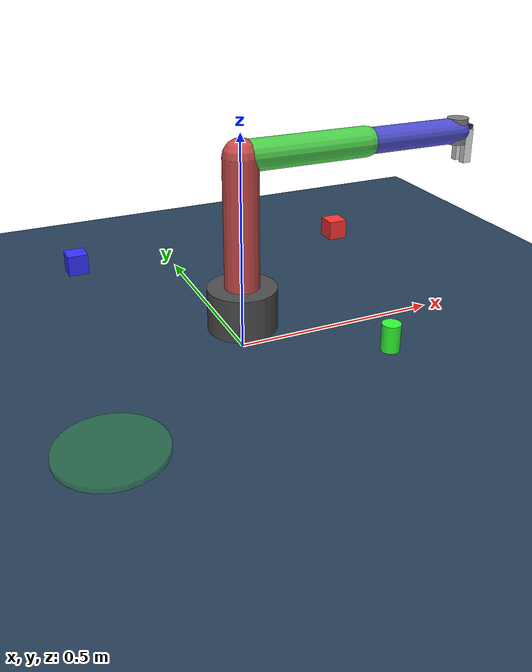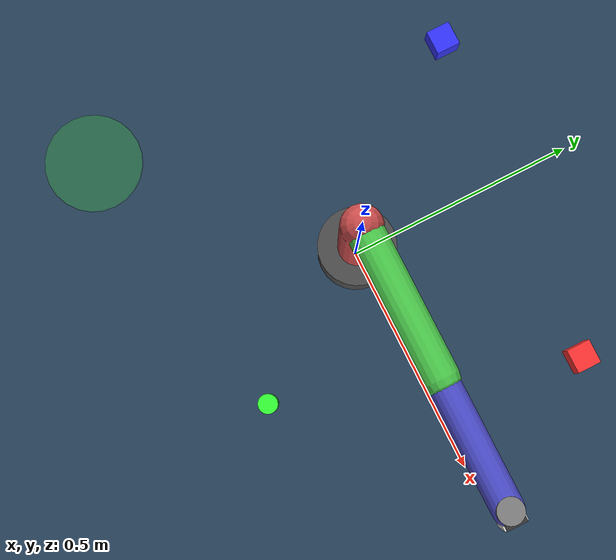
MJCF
<mujoco model="robot_arm_pick_place">
  <compiler angle="radian" coordinate="local"/>

  <option timestep="0.002" gravity="0 0 -9.81">
    <flag contact="enable"/>
  </option>

  <visual>
    <headlight diffuse="0.6 0.6 0.6" ambient="0.3 0.3 0.3" specular="0 0 0"/>
    <rgba haze="0.15 0.25 0.35 1"/>
    <global azimuth="120" elevation="-20"/>
  </visual>

  <asset>
    <texture type="skybox" builtin="gradient" rgb1="0.3 0.5 0.7" rgb2="0 0 0" width="512" height="512"/>
    <texture name="texplane" type="2d" builtin="checker" rgb1="0.2 0.3 0.4" rgb2="0.1 0.2 0.3" width="512" height="512" mark="cross" markrgb="1 1 1"/>
    <material name="matplane" reflectance="0.3" texture="texplane" texrepeat="1 1" texuniform="true"/>
  </asset>

  <worldbody>
    <light directional="true" diffuse="0.4 0.4 0.4" specular="0.1 0.1 0.1" pos="0 0 5.0" dir="0 0 -1" castshadow="false"/>
    <light directional="true" diffuse="0.6 0.6 0.6" specular="0.2 0.2 0.2" pos="0 0 4" dir="0 0 -1"/>

    <geom name="floor" pos="0 0 0" size="2 2 0.1" type="plane" material="matplane" condim="3"/>

    <!-- Robot arm base -->
    <body name="base" pos="0 0 0.1">
      <geom type="cylinder" size="0.08 0.05" rgba="0.3 0.3 0.3 1"/>
      <inertial pos="0 0 0" mass="2" diaginertia="0.01 0.01 0.01"/>

      <!-- Joint 1: Base rotation -->
      <joint name="joint1" type="hinge" pos="0 0 0" axis="0 0 1" range="-3.14 3.14" damping="0.5"/>

      <!-- Link 1 -->
      <body name="link1" pos="0 0 0.05">
        <geom type="capsule" fromto="0 0 0 0 0 0.3" size="0.04" rgba="0.8 0.3 0.3 1"/>
        <inertial pos="0 0 0.15" mass="1" diaginertia="0.01 0.01 0.001"/>

        <!-- Joint 2: Shoulder -->
        <body name="link2" pos="0 0 0.3">
          <joint name="joint2" type="hinge" pos="0 0 0" axis="0 1 0" range="-2.0 2.0" damping="0.5"/>
          <geom type="capsule" fromto="0 0 0 0.3 0 0" size="0.035" rgba="0.3 0.8 0.3 1"/>
          <inertial pos="0.15 0 0" mass="0.8" diaginertia="0.008 0.008 0.001"/>

          <!-- Joint 3: Elbow -->
          <body name="link3" pos="0.3 0 0">
            <joint name="joint3" type="hinge" pos="0 0 0" axis="0 1 0" range="-2.5 2.5" damping="0.3"/>
            <geom type="capsule" fromto="0 0 0 0.25 0 0" size="0.03" rgba="0.3 0.3 0.8 1"/>
            <inertial pos="0.125 0 0" mass="0.5" diaginertia="0.005 0.005 0.0005"/>

            <!-- Wrist -->
            <body name="wrist" pos="0.25 0 0">
              <joint name="joint4" type="hinge" pos="0 0 0" axis="0 0 1" range="-3.14 3.14" damping="0.2"/>
              <geom type="cylinder" size="0.025 0.03" rgba="0.5 0.5 0.5 1"/>
              <inertial pos="0 0 0" mass="0.2" diaginertia="0.001 0.001 0.001"/>

              <!-- Gripper base -->
              <body name="gripper_base" pos="0 0 0">
                <geom type="box" size="0.03 0.02 0.015" rgba="0.2 0.2 0.2 1"/>
                <inertial pos="0 0 0" mass="0.1" diaginertia="0.0001 0.0001 0.0001"/>

                <!-- Left finger -->
                <body name="left_finger" pos="0.02 0.015 0">
                  <joint name="gripper_left" type="slide" axis="0 1 0" range="0 0.04" damping="0.1"/>
                  <geom type="box" size="0.01 0.008 0.04" pos="0 0 -0.035" rgba="0.9 0.9 0.9 1"/>
                  <inertial pos="0 0 -0.035" mass="0.02" diaginertia="0.00001 0.00001 0.00001"/>
                </body>

                <!-- Right finger -->
                <body name="right_finger" pos="0.02 -0.015 0">
                  <joint name="gripper_right" type="slide" axis="0 -1 0" range="0 0.04" damping="0.1"/>
                  <geom type="box" size="0.01 0.008 0.04" pos="0 0 -0.035" rgba="0.9 0.9 0.9 1"/>
                  <inertial pos="0 0 -0.035" mass="0.02" diaginertia="0.00001 0.00001 0.00001"/>
                </body>

                <!-- Camera mounted on gripper -->
                <camera name="gripper_cam" pos="0.05 0 0" quat="0.707 0 0 0.707" fovy="60"/>
              </body>
            </body>
          </body>
        </body>
      </body>
    </body>

    <!-- Objects to pick -->
    <body name="red_cube" pos="0.4 0.3 0.125">
      <freejoint/>
      <geom name="red_cube_geom" type="box" size="0.025 0.025 0.025" rgba="1 0.2 0.2 1" mass="0.05" condim="4" friction="1 0.005 0.0001"/>
      <inertial pos="0 0 0" mass="0.05" diaginertia="0.00004 0.00004 0.00004"/>
    </body>

    <body name="blue_cube" pos="-0.3 0.35 0.125">
      <freejoint/>
      <geom name="blue_cube_geom" type="box" size="0.025 0.025 0.025" rgba="0.2 0.2 1 1" mass="0.05" condim="4" friction="1 0.005 0.0001"/>
      <inertial pos="0 0 0" mass="0.05" diaginertia="0.00004 0.00004 0.00004"/>
    </body>

    <body name="green_cylinder" pos="0.2 -0.3 0.13">
      <freejoint/>
      <geom name="green_cyl_geom" type="cylinder" size="0.02 0.03" rgba="0.2 1 0.2 1" mass="0.05" condim="4" friction="1 0.005 0.0001"/>
      <inertial pos="0 0 0" mass="0.05" diaginertia="0.00003 0.00003 0.00002"/>
    </body>

    <!-- Target zone -->
    <geom name="target_zone" type="cylinder" size="0.1 0.005" pos="-0.4 -0.4 0.105" rgba="0.2 0.8 0.2 0.3"/>

    <!-- External camera for overview -->
    <camera name="overview_cam" pos="1.2 -0.8 1.0" xyaxes="0.8 1.0 0 -0.3 0.24 1.0" fovy="45"/>
  </worldbody>

  <actuator>
    <!-- Position servos for arm joints -->
    <position name="act1" joint="joint1" kp="50" ctrlrange="-3.14 3.14"/>
    <position name="act2" joint="joint2" kp="50" ctrlrange="-2.0 2.0"/>
    <position name="act3" joint="joint3" kp="50" ctrlrange="-2.5 2.5"/>
    <position name="act4" joint="joint4" kp="30" ctrlrange="-3.14 3.14"/>
    <position name="act_grip_l" joint="gripper_left" kp="20" ctrlrange="0 0.04"/>
    <position name="act_grip_r" joint="gripper_right" kp="20" ctrlrange="0 0.04"/>
  </actuator>

  <sensor>
    <jointpos name="joint1_pos" joint="joint1"/>
    <jointpos name="joint2_pos" joint="joint2"/>
    <jointpos name="joint3_pos" joint="joint3"/>
    <jointpos name="joint4_pos" joint="joint4"/>
    <jointvel name="joint1_vel" joint="joint1"/>
    <jointvel name="joint2_vel" joint="joint2"/>
    <jointvel name="joint3_vel" joint="joint3"/>
    <jointvel name="joint4_vel" joint="joint4"/>
  </sensor>
</mujoco>
